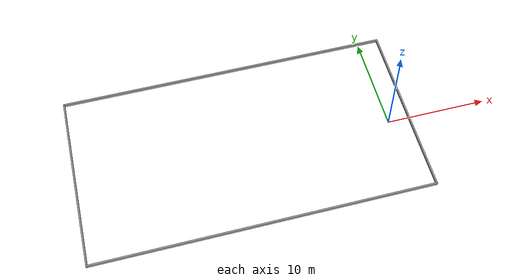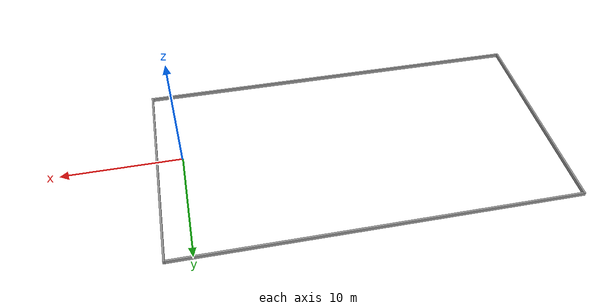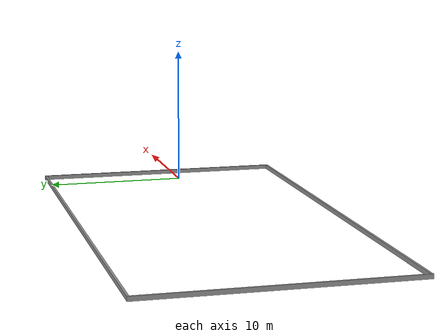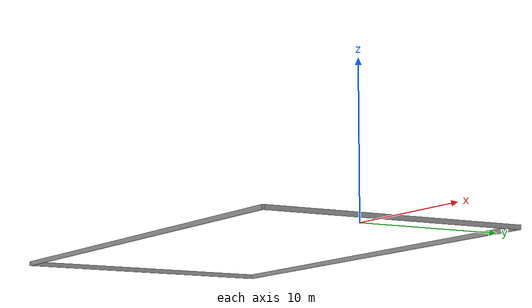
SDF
<?xml version='1.0'?>
<sdf version='1.7'>
  <model name='SDC_WALL'>
    <pose>-14.4161 1.16088 0 0 -0 0</pose>
    <link name='Wall_2'>
      <collision name='Wall_2_Collision'>
        <geometry>
          <box>
            <size>18.15 0.15 0.3</size>
          </box>
        </geometry>
        <pose>0 0 0.15 0 -0 0</pose>
      </collision>
      <visual name='Wall_2_Visual'>
        <pose>0 0 0.15 0 -0 0</pose>
        <geometry>
          <box>
            <size>18.15 0.15 0.3</size>
          </box>
        </geometry>
        <material>
          <script>
            <uri>file://media/materials/scripts/gazebo.material</uri>
            <name>Gazebo/Grey</name>
          </script>
          <ambient>1 1 1 1</ambient>
        </material>
        <meta>
          <layer>0</layer>
        </meta>
      </visual>
      <pose>-16.5504 -0.000382 0 0 -0 1.5708</pose>
    </link>
    <link name='Wall_3'>
      <collision name='Wall_3_Collision'>
        <geometry>
          <box>
            <size>33.25 0.15 0.3</size>
          </box>
        </geometry>
        <pose>0 0 0.15 0 -0 0</pose>
      </collision>
      <visual name='Wall_3_Visual'>
        <pose>0 0 0.15 0 -0 0</pose>
        <geometry>
          <box>
            <size>33.25 0.15 0.3</size>
          </box>
        </geometry>
        <material>
          <script>
            <uri>file://media/materials/scripts/gazebo.material</uri>
            <name>Gazebo/Grey</name>
          </script>
          <ambient>1 1 1 1</ambient>
        </material>
        <meta>
          <layer>0</layer>
        </meta>
      </visual>
      <pose>-0.000129 8.99987 0 0 -0 1.5e-05</pose>
    </link>
    <link name='Wall_4'>
      <collision name='Wall_4_Collision'>
        <geometry>
          <box>
            <size>18.1505 0.15 0.3</size>
          </box>
        </geometry>
        <pose>0 0 0.15 0 -0 0</pose>
      </collision>
      <visual name='Wall_4_Visual'>
        <pose>0 0 0.15 0 -0 0</pose>
        <geometry>
          <box>
            <size>18.1505 0.15 0.3</size>
          </box>
        </geometry>
        <material>
          <script>
            <uri>file://media/materials/scripts/gazebo.material</uri>
            <name>Gazebo/Grey</name>
          </script>
          <ambient>1 1 1 1</ambient>
        </material>
        <meta>
          <layer>0</layer>
        </meta>
      </visual>
      <pose>16.5501 0.000116 0 0 -0 -1.5708</pose>
    </link>
    <link name='Wall_5'>
      <collision name='Wall_5_Collision'>
        <geometry>
          <box>
            <size>33.2505 0.15 0.3</size>
          </box>
        </geometry>
        <pose>0 0 0.15 0 -0 0</pose>
      </collision>
      <visual name='Wall_5_Visual'>
        <pose>0 0 0.15 0 -0 0</pose>
        <geometry>
          <box>
            <size>33.2505 0.15 0.3</size>
          </box>
        </geometry>
        <material>
          <script>
            <uri>file://media/materials/scripts/gazebo.material</uri>
            <name>Gazebo/Grey</name>
          </script>
          <ambient>1 1 1 1</ambient>
        </material>
        <meta>
          <layer>0</layer>
        </meta>
      </visual>
      <pose>0.000119 -8.99738 0 0 -0 3.14144</pose>
    </link>
    <static>1</static>
  </model>
</sdf>
